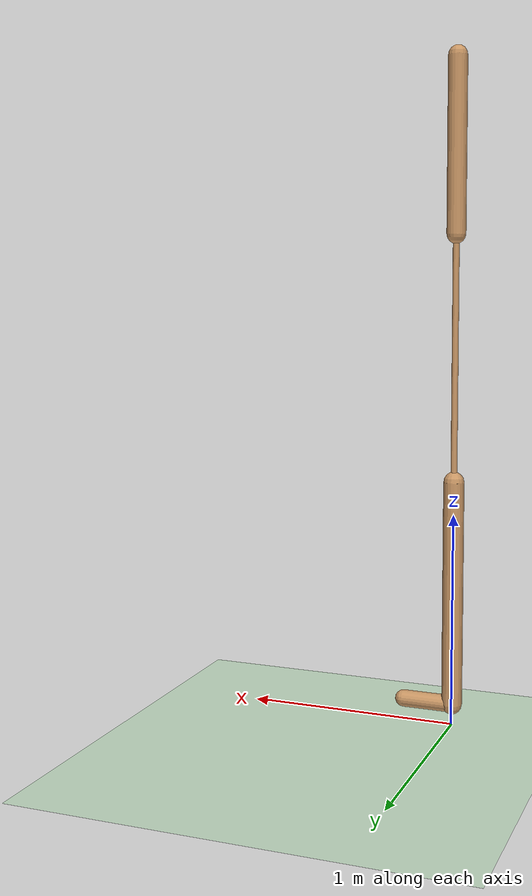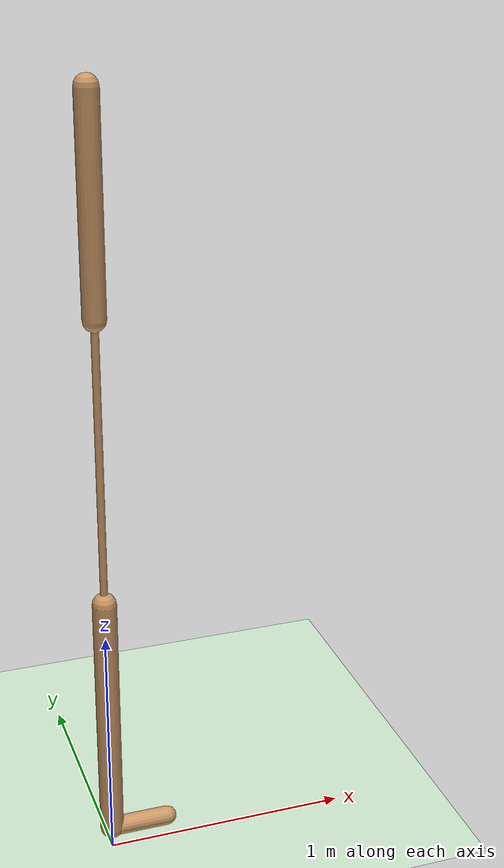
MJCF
<mujoco model="walker2d">
  <compiler angle="degree" inertiafromgeom="true" />
  <default>
    <joint armature="0.01" damping=".1" limited="true" />
    <geom conaffinity="0" condim="3" contype="1" density="1000" friction=".7 .1 .1" rgba="0.8 0.6 .4 1" />
  </default>
  <option integrator="RK4" timestep="0.002" />
  <worldbody>
    <light cutoff="100" diffuse="1 1 1" dir="-0 0 -1.3" directional="true" exponent="1" pos="0 0 1.3" specular=".1 .1 .1" />
    <geom conaffinity="1" condim="3" name="floor" pos="0 0 0" rgba="0.8 0.9 0.8 1" size="40 40 40" type="plane" material="MatPlane" />
    <body name="torso" pos="0 0 2.684478795528412">
      <camera name="track" mode="trackcom" pos="0 -5 -1.25" xyaxes="1 0 0 0 0 1" />
      <joint armature="0" axis="1 0 0" damping="0" limited="false" name="rootx" pos="0 0 -1.25" stiffness="0" type="slide" />
      <joint armature="0" axis="0 0 1" damping="0" limited="false" name="rootz" pos="0 0 -1.25" ref="1.25" stiffness="0" type="slide" />
      <joint armature="0" axis="0 1 0" damping="0" limited="false" name="rooty" pos="0 0 0" stiffness="0" type="hinge" />
      <geom friction="0.9" name="torso_geom" size="0.044050417840480804 0.3947102427482605" type="capsule" />
      <body name="thigh" pos="0 0 -0.3947102427482605">
        <joint axis="0 -1 0" name="thigh_joint" pos="0 0 0" range="-150 0" type="hinge" />
        <site name="torso_thigh_site" pos="0 0 0" size="0.01" type="sphere" rgba="1 0 0 0.5" />
        <geom friction="0.9" pos="0 0 -0.5670117139816284" name="thigh_geom" size="0.01471057627350092 0.5670117139816284" type="capsule" />
        <body name="leg" pos="0 0 -1.661895990371704">
          <joint axis="0 -1 0" name="leg_joint" pos="0 0 0.5278725624084473" range="-150 0" type="hinge" />
          <site name="thigh_leg_site" pos="0 0 0.25" size="0.01" type="sphere" rgba="1 0 0 0.5" />
          <geom friction="0.9" name="leg_geom" size="0.047806814312934875 0.5278725624084473" type="capsule" />
          <body name="foot" pos="0.23611679673194885 0 -0.6278725624084472">
            <joint axis="0 -1 0" name="foot_joint" pos="-0.23611679673194885 0 0.1" range="-45 45" type="hinge" />
            <site name="leg_foot_site" pos="-0.2 0 0.1" size="0.01" type="sphere" rgba="1 0 0 0.5" />
            <geom friction="0.9" pos="-0.11805839836597443 0 0.1" quat="0.70710678118654757 0 -0.70710678118654746 0" name="foot_geom" size="0.03934170678257942 0.11805839836597443" type="capsule" />
          </body>
        </body>
      </body>

      <body name="thigh_left" pos="0 0 -0.3947102427482605">
        <joint axis="0 -1 0" name="thigh_left_joint" pos="0 0 0" range="-150 0" type="hinge" />
        <site name="torso_thigh_left_site" pos="0 0 0" size="0.01" type="sphere" rgba="1 0 0 0.5" />
        <geom friction="0.9" name="thigh_left_geom" rgba=".7 .3 .6 1" size="0.01471057627350092 0.5670117139816284" pos="0 0 -0.5670117139816284" type="capsule" />
        <body name="leg_left" pos="0 0 -1.661895990371704">
          <joint axis="0 -1 0" name="leg_left_joint" pos="0 0 0.5278725624084473" range="-150 0" type="hinge" />
          <site name="thigh_leg_left_site" pos="0 0 0.25" size="0.01" type="sphere" rgba="1 0 0 0.5" />
          <geom friction="0.9" name="leg_left_geom" rgba=".7 .3 .6 1" size="0.047806814312934875 0.5278725624084473" type="capsule" />
          <body name="foot_left" pos="0.23611679673194885 0 -0.6278725624084472">
            <joint axis="0 -1 0" name="foot_left_joint" pos="-0.23611679673194885 0 0.1" range="-45 45" type="hinge" />
            <site name="leg_foot_left_site" pos="-0.2 0 0.1" size="0.01" type="sphere" rgba="1 0 0 0.5" />
            <geom friction="1.9" name="foot_left_geom" rgba=".7 .3 .6 1" size="0.03934170678257942 0.11805839836597443" pos="-0.11805839836597443 0 0.1" type="capsule" quat="0.70710678118654757 0 -0.70710678118654746 0" />
          </body>
        </body>
      </body>
    </body>
  </worldbody>
  <actuator>

    <motor ctrllimited="true" ctrlrange="-1.0 1.0" gear="21.813676925371944" joint="thigh_joint" />
    <motor ctrllimited="true" ctrlrange="-1.0 1.0" gear="301.612062924288" joint="leg_joint" />
    <motor ctrllimited="true" ctrlrange="-1.0 1.0" gear="50.757565154297794" joint="foot_joint" />
    <motor ctrllimited="true" ctrlrange="-1.0 1.0" gear="21.813676925371944" joint="thigh_left_joint" />
    <motor ctrllimited="true" ctrlrange="-1.0 1.0" gear="301.612062924288" joint="leg_left_joint" />
    <motor ctrllimited="true" ctrlrange="-1.0 1.0" gear="50.757565154297794" joint="foot_left_joint" />

  </actuator>
    <asset>
        <texture type="skybox" builtin="gradient" rgb1=".4 .5 .6" rgb2="0 0 0" width="100" height="100" />
        <texture builtin="flat" height="1278" mark="cross" markrgb="1 1 1" name="texgeom" random="0.01" rgb1="0.8 0.6 0.4" rgb2="0.8 0.6 0.4" type="cube" width="127" />
        <texture builtin="checker" height="100" name="texplane" rgb1="0 0 0" rgb2="0.8 0.8 0.8" type="2d" width="100" />
        <material name="MatPlane" reflectance="0.5" shininess="1" specular="1" texrepeat="60 60" texture="texplane" />
        <material name="geom" texture="texgeom" texuniform="true" />
    </asset>

  <sensor>
    <force site="torso_thigh_site" name="torso_thigh_sensor" />
    <force site="thigh_leg_site" name="thigh_leg_sensor" />
    <force site="leg_foot_site" name="leg_foot_sensor" />
    <force site="torso_thigh_left_site" name="torso_thigh_left_sensor" />
    <force site="thigh_leg_left_site" name="thigh_leg_left_sensor" />
    <force site="leg_foot_left_site" name="leg_foot_left_sensor" />
  </sensor>
</mujoco>
